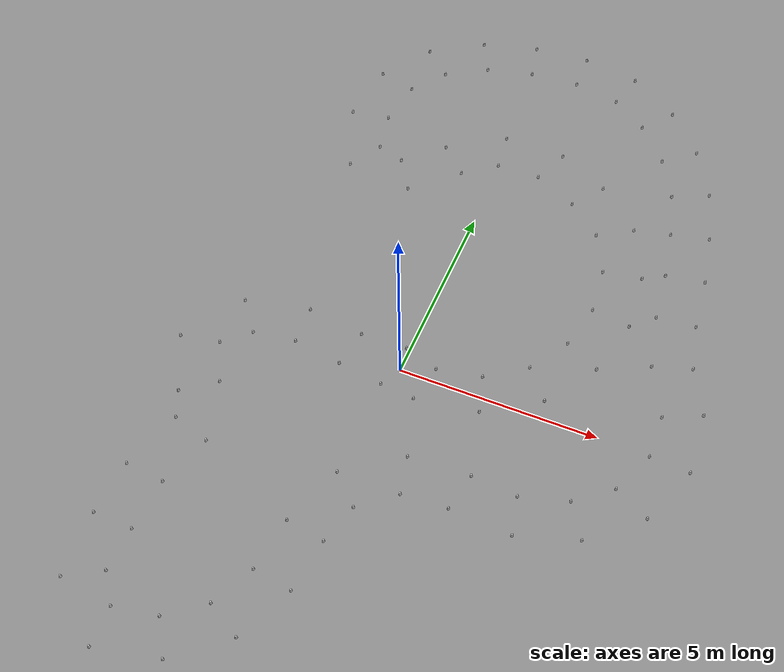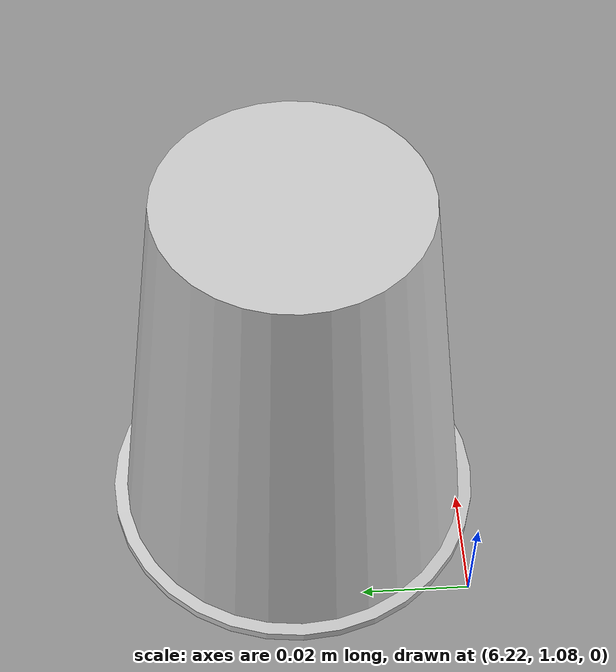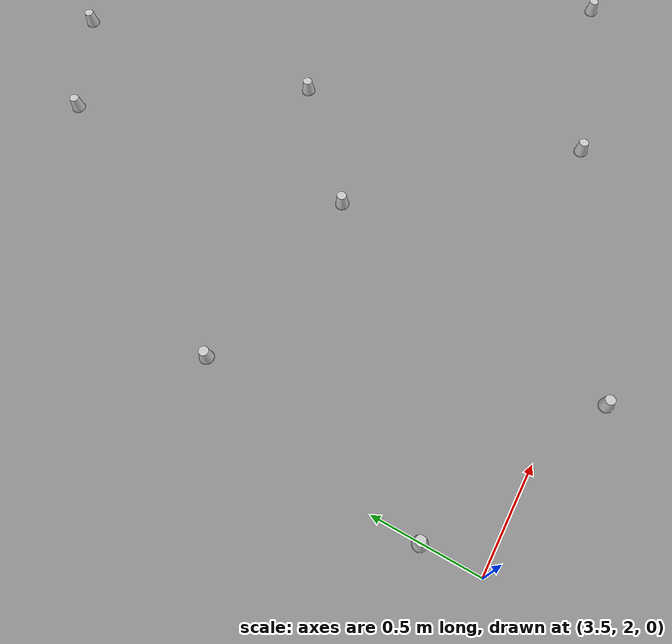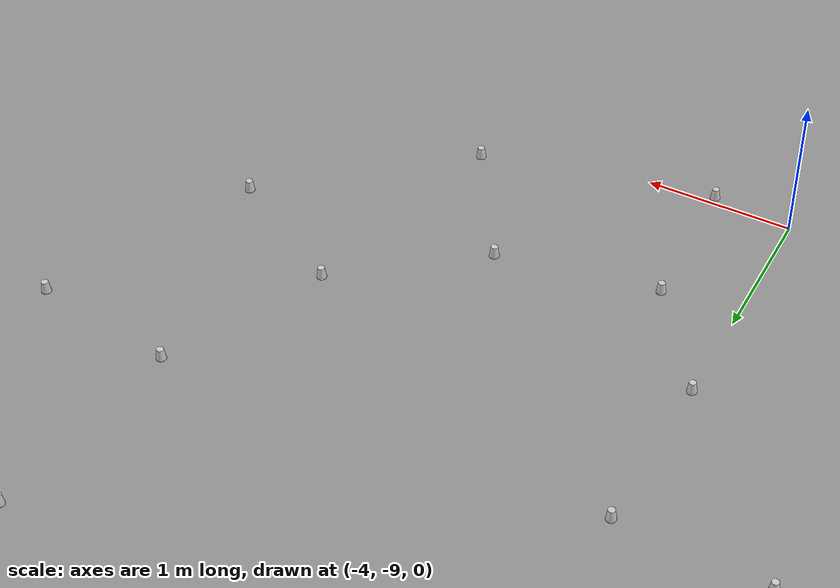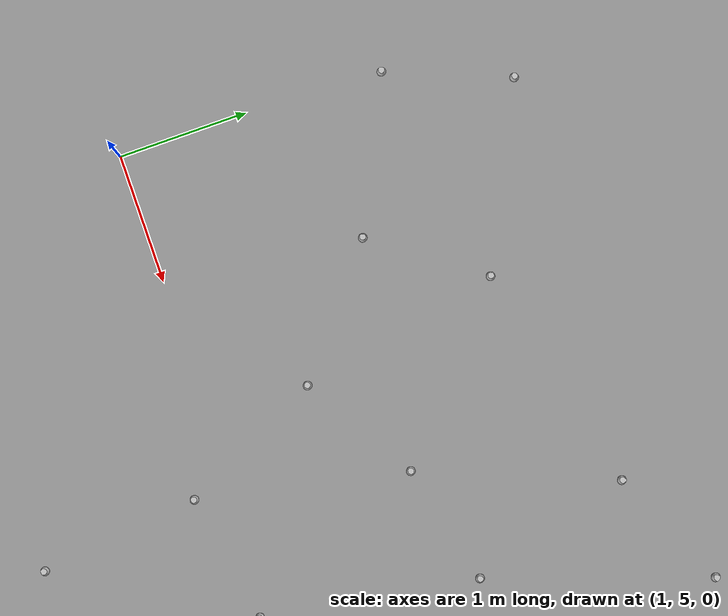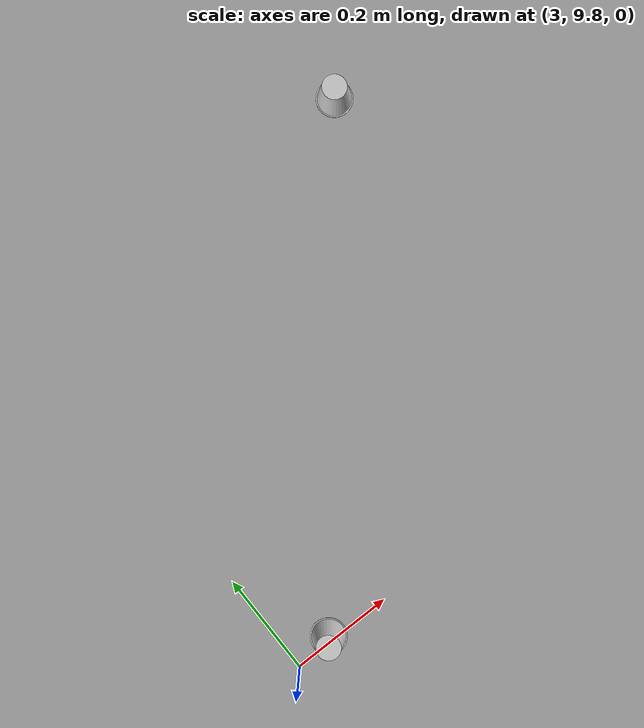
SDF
<?xml version='1.0' encoding='UTF-8'?>
<sdf version="1.4">
  <model name="some track">
    <include>
      <uri>model://cone_yellow</uri>
      <pose>0.5961359624387186 -0.6249348745271596 0 0 0 0</pose>
      <name>cone_right_0</name>
    </include>
    <include>
      <uri>model://cone_yellow</uri>
      <pose>2.190405753199139 -0.3814991386250808 0 0 0 0</pose>
      <name>cone_right_1</name>
    </include>
    <include>
      <uri>model://cone_yellow</uri>
      <pose>3.5194626643825915 0.49538736871937833 0 0 0 0</pose>
      <name>cone_right_2</name>
    </include>
    <include>
      <uri>model://cone_yellow</uri>
      <pose>4.388238835221577 1.8194349581041214 0 0 0 0</pose>
      <name>cone_right_3</name>
    </include>
    <include>
      <uri>model://cone_yellow</uri>
      <pose>4.738226243284166 3.3316128693797347 0 0 0 0</pose>
      <name>cone_right_4</name>
    </include>
    <include>
      <uri>model://cone_yellow</uri>
      <pose>4.596053515311783 4.865733984766754 0 0 0 0</pose>
      <name>cone_right_5</name>
    </include>
    <include>
      <uri>model://cone_yellow</uri>
      <pose>3.940862768028623 6.282261387054542 0 0 0 0</pose>
      <name>cone_right_6</name>
    </include>
    <include>
      <uri>model://cone_yellow</uri>
      <pose>2.76325370351823 7.326974108395165 0 0 0 0</pose>
      <name>cone_right_7</name>
    </include>
    <include>
      <uri>model://cone_yellow</uri>
      <pose>1.4083993685255713 7.991809437892048 0 0 0 0</pose>
      <name>cone_right_8</name>
    </include>
    <include>
      <uri>model://cone_yellow</uri>
      <pose>-0.21259345848225294 8.026110269842873 0 0 0 0</pose>
      <name>cone_right_9</name>
    </include>
    <include>
      <uri>model://cone_yellow</uri>
      <pose>-1.6208112523455112 7.111773608928791 0 0 0 0</pose>
      <name>cone_right_10</name>
    </include>
    <include>
      <uri>model://cone_yellow</uri>
      <pose>-2.5587733133136767 6.2229152171347675 0 0 0 0</pose>
      <name>cone_right_11</name>
    </include>
    <include>
      <uri>model://cone_yellow</uri>
      <pose>-3.2772111438702454 6.457465249153249 0 0 0 0</pose>
      <name>cone_right_12</name>
    </include>
    <include>
      <uri>model://cone_yellow</uri>
      <pose>-3.485250933753936 7.520487883973577 0 0 0 0</pose>
      <name>cone_right_13</name>
    </include>
    <include>
      <uri>model://cone_yellow</uri>
      <pose>-3.303153827101874 8.768086354879987 0 0 0 0</pose>
      <name>cone_right_14</name>
    </include>
    <include>
      <uri>model://cone_yellow</uri>
      <pose>-2.641020643820172 9.652402492539945 0 0 0 0</pose>
      <name>cone_right_15</name>
    </include>
    <include>
      <uri>model://cone_yellow</uri>
      <pose>-1.6006931207743509 10.266449740545305 0 0 0 0</pose>
      <name>cone_right_16</name>
    </include>
    <include>
      <uri>model://cone_yellow</uri>
      <pose>-0.38754216942668196 10.582202006755173 0 0 0 0</pose>
      <name>cone_right_17</name>
    </include>
    <include>
      <uri>model://cone_yellow</uri>
      <pose>0.898437359669574 10.680516226596044 0 0 0 0</pose>
      <name>cone_right_18</name>
    </include>
    <include>
      <uri>model://cone_yellow</uri>
      <pose>2.1240089467044925 10.465208781723977 0 0 0 0</pose>
      <name>cone_right_19</name>
    </include>
    <include>
      <uri>model://cone_yellow</uri>
      <pose>3.0770171286932237 9.810604521843112 0 0 0 0</pose>
      <name>cone_right_20</name>
    </include>
    <include>
      <uri>model://cone_yellow</uri>
      <pose>3.929928819899486 8.839392092672425 0 0 0 0</pose>
      <name>cone_right_21</name>
    </include>
    <include>
      <uri>model://cone_yellow</uri>
      <pose>4.521496063595448 7.7459101204125105 0 0 0 0</pose>
      <name>cone_right_22</name>
    </include>
    <include>
      <uri>model://cone_yellow</uri>
      <pose>4.8610968384431805 6.505525272606279 0 0 0 0</pose>
      <name>cone_right_23</name>
    </include>
    <include>
      <uri>model://cone_yellow</uri>
      <pose>5.120034139173347 5.180956185882057 0 0 0 0</pose>
      <name>cone_right_24</name>
    </include>
    <include>
      <uri>model://cone_yellow</uri>
      <pose>5.277863797450234 3.845870655335762 0 0 0 0</pose>
      <name>cone_right_25</name>
    </include>
    <include>
      <uri>model://cone_yellow</uri>
      <pose>5.600673146262336 2.405943882748421 0 0 0 0</pose>
      <name>cone_right_26</name>
    </include>
    <include>
      <uri>model://cone_yellow</uri>
      <pose>6.245721644772523 1.111626669310111 0 0 0 0</pose>
      <name>cone_right_27</name>
    </include>
    <include>
      <uri>model://cone_yellow</uri>
      <pose>6.286856756989656 -0.019170146308467157 0 0 0 0</pose>
      <name>cone_right_28</name>
    </include>
    <include>
      <uri>model://cone_yellow</uri>
      <pose>5.828866584029688 -1.1289615335402385 0 0 0 0</pose>
      <name>cone_right_29</name>
    </include>
    <include>
      <uri>model://cone_yellow</uri>
      <pose>4.971499102115594 -1.8275533006161786 0 0 0 0</pose>
      <name>cone_right_30</name>
    </include>
    <include>
      <uri>model://cone_yellow</uri>
      <pose>3.797398926809412 -2.170430812196154 0 0 0 0</pose>
      <name>cone_right_31</name>
    </include>
    <include>
      <uri>model://cone_yellow</uri>
      <pose>2.630522665468229 -2.0680049288576536 0 0 0 0</pose>
      <name>cone_right_32</name>
    </include>
    <include>
      <uri>model://cone_yellow</uri>
      <pose>1.0777689839968365 -2.1559130403246574 0 0 0 0</pose>
      <name>cone_right_33</name>
    </include>
    <include>
      <uri>model://cone_yellow</uri>
      <pose>-0.272311932436356 -3.1422465146511747 0 0 0 0</pose>
      <name>cone_right_34</name>
    </include>
    <include>
      <uri>model://cone_yellow</uri>
      <pose>-0.8192897974238555 -4.7056371992084 0 0 0 0</pose>
      <name>cone_right_35</name>
    </include>
    <include>
      <uri>model://cone_yellow</uri>
      <pose>-0.9890538154394986 -6.088228251684057 0 0 0 0</pose>
      <name>cone_right_36</name>
    </include>
    <include>
      <uri>model://cone_yellow</uri>
      <pose>-1.4930237795917318 -7.171543749071062 0 0 0 0</pose>
      <name>cone_right_37</name>
    </include>
    <include>
      <uri>model://cone_yellow</uri>
      <pose>-2.3891479493785956 -7.863670693968169 0 0 0 0</pose>
      <name>cone_right_38</name>
    </include>
    <include>
      <uri>model://cone_yellow</uri>
      <pose>-3.4860751527446343 -8.05928350807887 0 0 0 0</pose>
      <name>cone_right_39</name>
    </include>
    <include>
      <uri>model://cone_yellow</uri>
      <pose>-3.993404617192178 -7.350978776688328 0 0 0 0</pose>
      <name>cone_right_40</name>
    </include>
    <include>
      <uri>model://cone_yellow</uri>
      <pose>-3.9650521570400343 -6.230735218951598 0 0 0 0</pose>
      <name>cone_right_41</name>
    </include>
    <include>
      <uri>model://cone_yellow</uri>
      <pose>-3.8886020769734544 -4.889900028692319 0 0 0 0</pose>
      <name>cone_right_42</name>
    </include>
    <include>
      <uri>model://cone_yellow</uri>
      <pose>-3.459587889895376 -3.537808961450739 0 0 0 0</pose>
      <name>cone_right_43</name>
    </include>
    <include>
      <uri>model://cone_yellow</uri>
      <pose>-3.9036244639550817 -1.944707397458501 0 0 0 0</pose>
      <name>cone_right_44</name>
    </include>
    <include>
      <uri>model://cone_yellow</uri>
      <pose>-4.41445989916531 -0.9145326998564471 0 0 0 0</pose>
      <name>cone_right_45</name>
    </include>
    <include>
      <uri>model://cone_yellow</uri>
      <pose>-3.7852580941602416 -0.3391988342038885 0 0 0 0</pose>
      <name>cone_right_46</name>
    </include>
    <include>
      <uri>model://cone_yellow</uri>
      <pose>-2.707397500121617 -0.1814068776376594 0 0 0 0</pose>
      <name>cone_right_47</name>
    </include>
    <include>
      <uri>model://cone_yellow</uri>
      <pose>-1.4537953099287122 -0.3698172269375388 0 0 0 0</pose>
      <name>cone_right_48</name>
    </include>
    <include>
      <uri>model://cone_yellow</uri>
      <pose>-0.283882214578945 -0.5422235515604754 0 0 0 0</pose>
      <name>cone_right_49</name>
    </include>
    <include>
      <uri>model://cone_blue</uri>
      <pose>0.7865337332936666 0.35677215348754643 0 0 0 0</pose>
      <name>cone_left_0</name>
    </include>
    <include>
      <uri>model://cone_blue</uri>
      <pose>1.911352437387215 0.5787764712569835 0 0 0 0</pose>
      <name>cone_left_1</name>
    </include>
    <include>
      <uri>model://cone_blue</uri>
      <pose>2.875328290282467 1.2602997219355103 0 0 0 0</pose>
      <name>cone_left_2</name>
    </include>
    <include>
      <uri>model://cone_blue</uri>
      <pose>3.497669398453916 2.274282271271222 0 0 0 0</pose>
      <name>cone_left_3</name>
    </include>
    <include>
      <uri>model://cone_blue</uri>
      <pose>3.7475107799793776 3.467564591578381 0 0 0 0</pose>
      <name>cone_left_4</name>
    </include>
    <include>
      <uri>model://cone_blue</uri>
      <pose>3.6117981989865724 4.688981411134684 0 0 0 0</pose>
      <name>cone_left_5</name>
    </include>
    <include>
      <uri>model://cone_blue</uri>
      <pose>3.085588451305874 5.764085892502325 0 0 0 0</pose>
      <name>cone_left_6</name>
    </include>
    <include>
      <uri>model://cone_blue</uri>
      <pose>2.1760802618659802 6.517512960829544 0 0 0 0</pose>
      <name>cone_left_7</name>
    </include>
    <include>
      <uri>model://cone_blue</uri>
      <pose>1.0390023836064197 7.062537751283315 0 0 0 0</pose>
      <name>cone_left_8</name>
    </include>
    <include>
      <uri>model://cone_blue</uri>
      <pose>-0.0823542790158677 7.034627664785213 0 0 0 0</pose>
      <name>cone_left_9</name>
    </include>
    <include>
      <uri>model://cone_blue</uri>
      <pose>-0.9034749846007235 6.415046489478158 0 0 0 0</pose>
      <name>cone_left_10</name>
    </include>
    <include>
      <uri>model://cone_blue</uri>
      <pose>-2.0209306332806403 5.379869992051985 0 0 0 0</pose>
      <name>cone_left_11</name>
    </include>
    <include>
      <uri>model://cone_blue</uri>
      <pose>-3.7785056883747727 5.5921885421687145 0 0 0 0</pose>
      <name>cone_left_12</name>
    </include>
    <include>
      <uri>model://cone_blue</uri>
      <pose>-4.47140906838401 7.354680364533313 0 0 0 0</pose>
      <name>cone_left_13</name>
    </include>
    <include>
      <uri>model://cone_blue</uri>
      <pose>-4.274492641138841 9.00578555207101 0 0 0 0</pose>
      <name>cone_left_14</name>
    </include>
    <include>
      <uri>model://cone_blue</uri>
      <pose>-3.3828468591130885 10.322994668384688 0 0 0 0</pose>
      <name>cone_left_15</name>
    </include>
    <include>
      <uri>model://cone_blue</uri>
      <pose>-2.045549046606609 11.162051887289007 0 0 0 0</pose>
      <name>cone_left_16</name>
    </include>
    <include>
      <uri>model://cone_blue</uri>
      <pose>-0.5947830092367845 11.560491960866328 0 0 0 0</pose>
      <name>cone_left_17</name>
    </include>
    <include>
      <uri>model://cone_blue</uri>
      <pose>0.8671077193300687 11.680025332925844 0 0 0 0</pose>
      <name>cone_left_18</name>
    </include>
    <include>
      <uri>model://cone_blue</uri>
      <pose>2.3711657001111135 11.4341842918611 0 0 0 0</pose>
      <name>cone_left_19</name>
    </include>
    <include>
      <uri>model://cone_blue</uri>
      <pose>3.7071953864768528 10.587055011840247 0 0 0 0</pose>
      <name>cone_left_20</name>
    </include>
    <include>
      <uri>model://cone_blue</uri>
      <pose>4.705722712424709 9.470378492145949 0 0 0 0</pose>
      <name>cone_left_21</name>
    </include>
    <include>
      <uri>model://cone_blue</uri>
      <pose>5.4300318640098 8.163717132519121 0 0 0 0</pose>
      <name>cone_left_22</name>
    </include>
    <include>
      <uri>model://cone_blue</uri>
      <pose>5.8333765558732145 6.739346039592817 0 0 0 0</pose>
      <name>cone_left_23</name>
    </include>
    <include>
      <uri>model://cone_blue</uri>
      <pose>6.103905473107803 5.359833792814942 0 0 0 0</pose>
      <name>cone_left_24</name>
    </include>
    <include>
      <uri>model://cone_blue</uri>
      <pose>6.273202244857348 3.9423142923119605 0 0 0 0</pose>
      <name>cone_left_25</name>
    </include>
    <include>
      <uri>model://cone_blue</uri>
      <pose>6.552839120746592 2.711525225494418 0 0 0 0</pose>
      <name>cone_left_26</name>
    </include>
    <include>
      <uri>model://cone_blue</uri>
      <pose>7.149419692785472 1.539797006930068 0 0 0 0</pose>
      <name>cone_left_27</name>
    </include>
    <include>
      <uri>model://cone_blue</uri>
      <pose>7.285073905279616 -0.07885703649267066 0 0 0 0</pose>
      <name>cone_left_28</name>
    </include>
    <include>
      <uri>model://cone_blue</uri>
      <pose>6.716667822955603 -1.5891886081040982 0 0 0 0</pose>
      <name>cone_left_29</name>
    </include>
    <include>
      <uri>model://cone_blue</uri>
      <pose>5.5146292120845 -2.6672018483104885 0 0 0 0</pose>
      <name>cone_left_30</name>
    </include>
    <include>
      <uri>model://cone_blue</uri>
      <pose>4.024489982147835 -3.1443043422734847 0 0 0 0</pose>
      <name>cone_left_31</name>
    </include>
    <include>
      <uri>model://cone_blue</uri>
      <pose>2.456121308002815 -3.0526795789397103 0 0 0 0</pose>
      <name>cone_left_32</name>
    </include>
    <include>
      <uri>model://cone_blue</uri>
      <pose>1.2990525857249742 -3.1311225396663236 0 0 0 0</pose>
      <name>cone_left_33</name>
    </include>
    <include>
      <uri>model://cone_blue</uri>
      <pose>0.4410871946770618 -3.843004451055618 0 0 0 0</pose>
      <name>cone_left_34</name>
    </include>
    <include>
      <uri>model://cone_blue</uri>
      <pose>0.16636918488350116 -4.874386630605445 0 0 0 0</pose>
      <name>cone_left_35</name>
    </include>
    <include>
      <uri>model://cone_blue</uri>
      <pose>-0.0007599151558811967 -6.240790260920286 0 0 0 0</pose>
      <name>cone_left_36</name>
    </include>
    <include>
      <uri>model://cone_blue</uri>
      <pose>-0.6290704451431413 -7.675115626656736 0 0 0 0</pose>
      <name>cone_left_37</name>
    </include>
    <include>
      <uri>model://cone_blue</uri>
      <pose>-1.856854198758997 -8.710230416050033 0 0 0 0</pose>
      <name>cone_left_38</name>
    </include>
    <include>
      <uri>model://cone_blue</uri>
      <pose>-3.4513871638534113 -9.058681698704952 0 0 0 0</pose>
      <name>cone_left_39</name>
    </include>
    <include>
      <uri>model://cone_blue</uri>
      <pose>-4.855813012878894 -7.857191932433085 0 0 0 0</pose>
      <name>cone_left_40</name>
    </include>
    <include>
      <uri>model://cone_blue</uri>
      <pose>-4.964193700981848 -6.189308474334518 0 0 0 0</pose>
      <name>cone_left_41</name>
    </include>
    <include>
      <uri>model://cone_blue</uri>
      <pose>-4.883164945170628 -4.785762133556057 0 0 0 0</pose>
      <name>cone_left_42</name>
    </include>
    <include>
      <uri>model://cone_blue</uri>
      <pose>-4.413140541248824 -3.2365825663642345 0 0 0 0</pose>
      <name>cone_left_43</name>
    </include>
    <include>
      <uri>model://cone_blue</uri>
      <pose>-4.700870784163473 -2.548361524350862 0 0 0 0</pose>
      <name>cone_left_44</name>
    </include>
    <include>
      <uri>model://cone_blue</uri>
      <pose>-5.39740241575856 -1.0984457474450517 0 0 0 0</pose>
      <name>cone_left_45</name>
    </include>
    <include>
      <uri>model://cone_blue</uri>
      <pose>-4.394062818107108 0.45412128283587194 0 0 0 0</pose>
      <name>cone_left_46</name>
    </include>
    <include>
      <uri>model://cone_blue</uri>
      <pose>-2.767984749853498 0.8167560274885163 0 0 0 0</pose>
      <name>cone_left_47</name>
    </include>
    <include>
      <uri>model://cone_blue</uri>
      <pose>-1.290559266383062 0.6167698164030692 0 0 0 0</pose>
      <name>cone_left_48</name>
    </include>
    <include>
      <uri>model://cone_blue</uri>
      <pose>-0.10218843382786957 0.6488801222521445 0 0 0 0</pose>
      <name>cone_left_49</name>
    </include>
  </model>
</sdf>

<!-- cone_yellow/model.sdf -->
<sdf version='1.4'>
  <model name="cone_yellow">
    <link name="link">
    <collision name="collision"><geometry><box><size> 0.05 0.05 0.01</size>
             </box></geometry></collision>
      <visual name="visual">
        <geometry>
          <mesh>
            <uri>model://cup.dae</uri>
            <scale>1 1 1</scale>
          </mesh>
        </geometry>
        <material>
            <script>
              <uri>model://cone_yellow/materials/scripts</uri>
              <uri>model://cone_yellow/materials/textures</uri>
              <name>cone_yellow/Image</name>
            </script>
        </material>
      </visual>
    </link>
  </model>
</sdf>

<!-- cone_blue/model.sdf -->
<sdf version='1.4'>
  <model name="cone_blue">
    <link name="link">
    <collision name="collision"><geometry><box><size> 0.05 0.05 0.01</size>
             </box></geometry></collision>
      <visual name="visual">
        <geometry>
          <mesh>
            <uri>model://cup.dae</uri>
            <scale>1 1 1</scale>
          </mesh>
        </geometry>
        <material>
            <script>
              <uri>model://cone_blue/materials/scripts</uri>
              <uri>model://cone_blue/materials/textures</uri>
              <name>cone_blue/Image</name>
            </script>
        </material>
      </visual>
    </link>
  </model>
</sdf>
